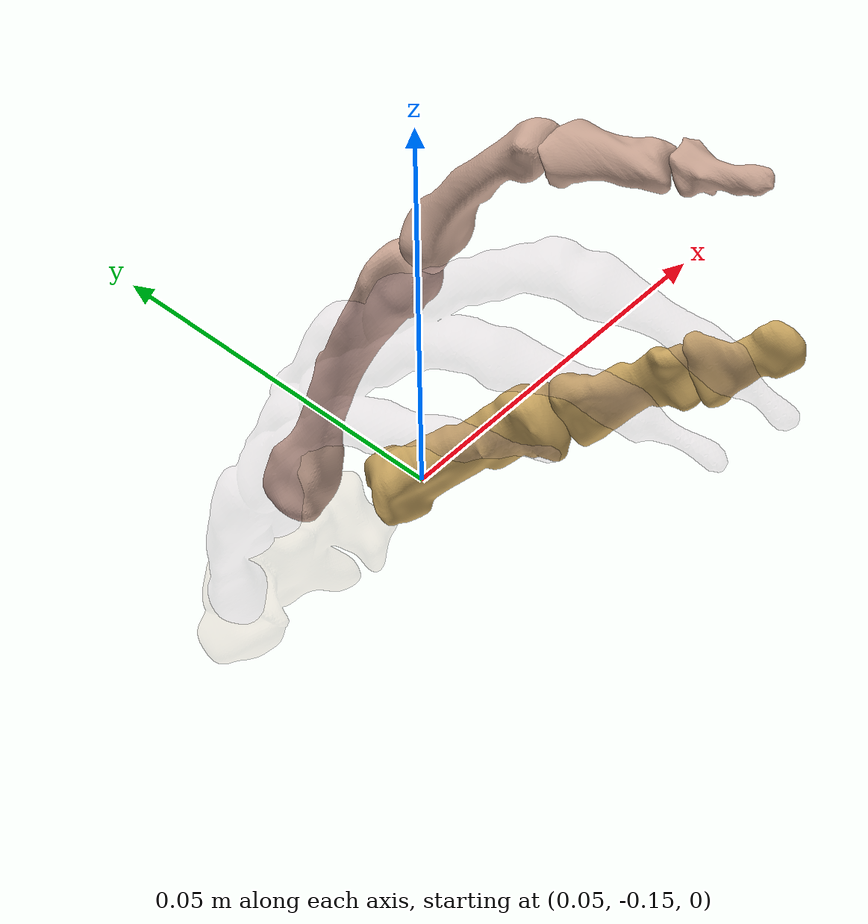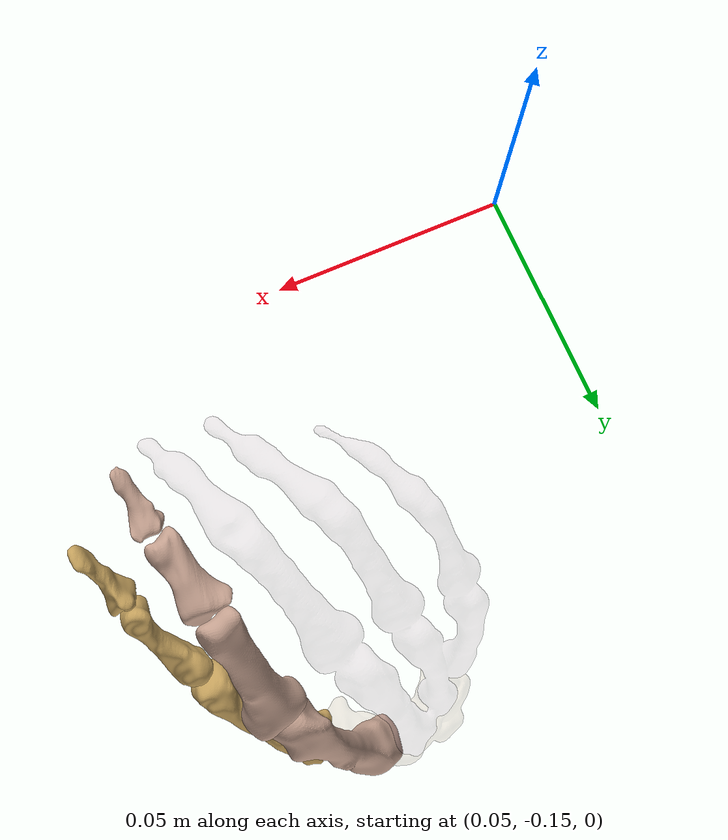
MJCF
<mujoco model="hand model">
    <visual>
        <headlight diffuse="0.6 0.6 0.6" ambient="0.3 0.3 0.3" specular="0 0 0" />
        <rgba haze="0.15 0.25 0.35 1" />
        <map znear="0.01" />
    </visual>
    <asset>
        <texture type="skybox" builtin="gradient" rgb1="0.3 0.5 0.7" rgb2="0 0 0" width="512" height="3072" />
        <texture type="2d" name="groundplane" builtin="checker" mark="edge" rgb1="0.2 0.3 0.4" rgb2="0.1 0.2 0.3" markrgb="0.8 0.8 0.8" width="300" height="300" />
        <material name="groundplane" texture="groundplane" texuniform="true" texrepeat="10 10" reflectance="0.3" />
        <material name="bone" reflectance="1" shininess="0" specular="0" rgba="0.68 0.64 0.57 1" />
    </asset>
    <default>
        <default class="zf">
            <geom type="mesh" contype="3" conaffinity="2" group="0" friction="0.7" solref="0.015 1" solimp="0.95 0.99 0.003" rgba="0.78 0.64 0.57 0.9" />
        </default>
        <default class="dau">
            <geom type="mesh" contype="3" conaffinity="2" group="0" friction="0.7" solref="0.015 1" solimp="0.95 0.99 0.003" rgba="0.78 0.64 0.37 0.9" />
        </default>
        <default class="base">
            <geom type="mesh" contype="3" conaffinity="2" group="0" friction="0.7" solref="0.015 1" solimp="0.95 0.99 0.003" rgba="0.74 0.60 0.47 0.1" />
        </default>
        <default class="other">
            <geom type="mesh" contype="3" conaffinity="2" group="0" friction="0.7" solref="0.015 1" solimp="0.95 0.99 0.003" rgba="0.74 0.60 0.67 0.1" />
        </default>
        <default class="visual">
            <geom type="mesh" contype="0" conaffinity="0" group="2" material="bone" rgba="0.68 0.64 0.57 1.0" />
        </default>
        <default class="tracker">
            <geom type="mesh" contype="0" conaffinity="0" group="2" rgba="0.2 0.2 1 0.2" />
        </default>
    </default>

    <compiler angle="radian" meshdir="../../assets/meshes" texturedir="assets" />
    <option integrator="RK4" />

    <statistic center="-0.4 -0.4 0.2" extent="1.2" />

    <visual>
        <headlight diffuse="0.6 0.6 0.6" ambient="0.3 0.3 0.3" specular="0 0 0" />
        <rgba haze="0.15 0.25 0.35 1" />
        <map znear="0.01" />
    </visual>

    <asset>
        <mesh file="Segmentation_ZF_DIP.stl" name="ZF-DIP" scale="0.001 0.001 0.001" />
        <mesh file="Segmentation_ZF_PIP.stl" name="ZF-PIP1" scale="0.001 0.001 0.001" />
        <mesh file="zf_mid2.stl" name="ZF-PIP2" scale="0.001 0.001 0.001" />
        <mesh file="zf_mcp.stl" name="ZF-MCP" scale="0.001 0.001 0.001" />
        <mesh file="Segmentation_DAU_Osmetacarpale_1.stl" name="DAU-MCP" scale="0.001 0.001 0.001" />
        <mesh file="Segmentation_DAU_Phalax_proximalis.stl" name="DAU-PIP" scale="0.001 0.001 0.001" />
        <mesh file="Segmentation_DAU_DIP.stl" name="DAU-DIP" scale="0.001 0.001 0.001" />
        <mesh file="backhand.stl" name="BASE" scale="0.001 0.001 0.001" />
        <mesh file="rest.stl" name="OTHER" scale="0.001 0.001 0.001" />
    </asset>

    <worldbody>

        <light pos="0 0 1.5" dir="0 0 -1" directional="true" />
        <geom name="floor" size="0 0 0.05" type="plane" material="groundplane" pos="0 0 0" />

        <body name="ZF_MCP" pos="0.17653044 -0.006212725 0.16246523" quat="0.94933915 0.2596205 0.1490058 -0.095653675">

            <geom class="zf" mesh="ZF-MCP" type="mesh" />
            <geom class="base" mesh="BASE" type="mesh" />
            <geom class="other" mesh="OTHER" type="mesh" />

            <body name="DAU_MCP" pos="0.0 0.0 0.0" quat="1.0 0.0 0.0 0.0">
                <geom class="dau" mesh="DAU-MCP" type="mesh" />

                <joint armature="0.001" axis="0.42229506 0.8981495 -0.12245156" limited="true" name="ZF_MCP_to_DAU_CMC" pos="0.18752605 0.0037526563 -0.23877528" range="-1 1" type="hinge" />
                <joint armature="0.001" axis="0.52542007 -0.6042909 -0.59897095" limited="true" name="DAU_CMC_to_DAU_MCP" pos="0.106232725 -0.25037313 -0.24235183" range="-0.2 1" type="hinge" />

                <body name="DAU_PIP" pos="0.0065976074 0.0056921565 -0.0040632915" quat="0.9998345 -0.010228439 0.00093457487 -0.01501821">
                    <geom class="dau" mesh="DAU-PIP" type="mesh" />

                    <joint armature="0.001" axis="-0.07833274 0.9722028 0.22064833" limited="true" name="DAU_MCP_to_DAU_PIP" pos="0.05687502 0.04745128 -0.13096282" range="-0.2 1" type="hinge" />

                    <body name="DAU_DIP" pos="0.019846616 0.006263732 4.985729e-05" quat="0.9991378 -0.0022404222 0.0069129 -0.04087585">
                        <geom class="dau" mesh="DAU-DIP" type="mesh" />

                        <joint armature="0.001" axis="0.37394902 -0.86912197 -0.32371134" limited="true" name="DAU_PIP_to_DAU_DIP" pos="-0.035437595 0.0664955 -0.046827186" range="-0.2 1" type="hinge" />
                        <body name="DAU_TIP" pos="0.0 0.0 0.0" quat="1.0 0.0 0.0 0.0" />
                    </body>
                </body>
            </body>

            <body name="ZF_PIP2" pos="-0.056813303 0.04557918 -0.120979056" quat="0.9545718 -0.22374728 -0.19425297 0.031553615">
                <geom class="zf" mesh="ZF-PIP2" type="mesh" />

                <joint armature="0.001" axis="0.8078836 0.5752491 -0.12811181" limited="true" name="ZF_MCP_to_ZF_PIP2" pos="-0.0028078088 -0.21749963 -0.15698552" range="-0.4 1" type="hinge" />

                <body name="ZF_PIP1" pos="0.003505814 -0.028415907 0.03578303" quat="0.9952809 0.08857938 0.03474635 0.019033285">
                    <geom class="zf" mesh="ZF-PIP1" type="mesh" />

                    <joint armature="0.001" axis="0.90138006 0.4211248 0.100836106" limited="true" name="ZF_PIP2_to_ZF_PIP1" pos="0.17911343 -0.12856804 -0.123749904" range="-0.4 1" type="hinge" />

                    <body name="ZF_DIP" pos="-0.0068004807 -0.013499799 0.017965216" quat="0.9989348 0.04221478 0.00284984 0.018412562">
                        <geom class="zf" mesh="ZF-DIP" type="mesh" />

                        <joint armature="0.001" axis="-0.8692016 -0.47317818 -0.14349574" limited="true" name="ZF_PIP1_to_ZF_DIP" pos="0.2288646 -0.09824868 -0.10552057" range="-0.4 1" type="hinge" />

                        <body name="ZF_TIP" pos="0.0 0.0 0.0" quat="1.0 0.0 0.0 0.0" />
                    </body>
                </body>
            </body>
        </body>

        <camera name="camera0" pos="0.375 0.069 0.146" xyaxes="-0.581 0.814 0.000 -0.114 -0.081 0.990" />

    </worldbody>
</mujoco>
